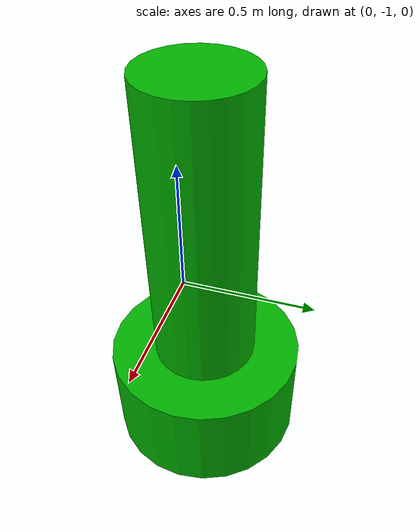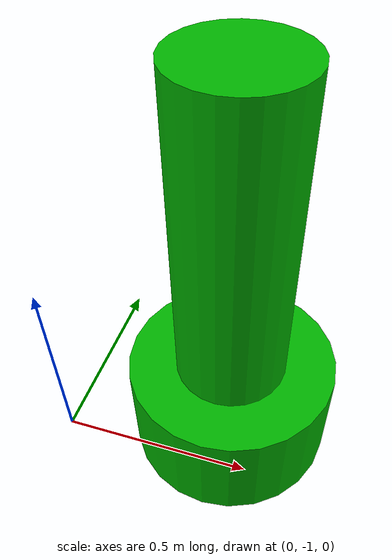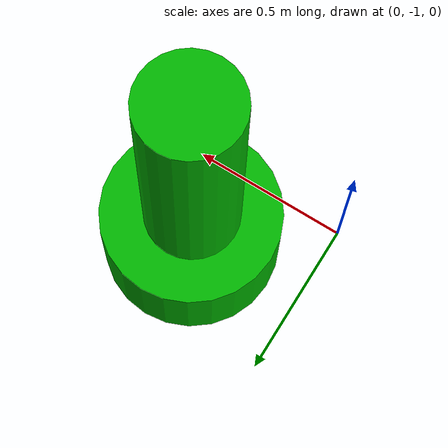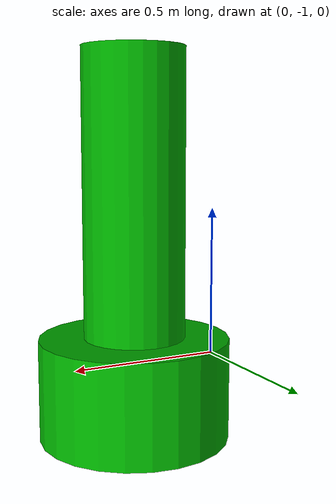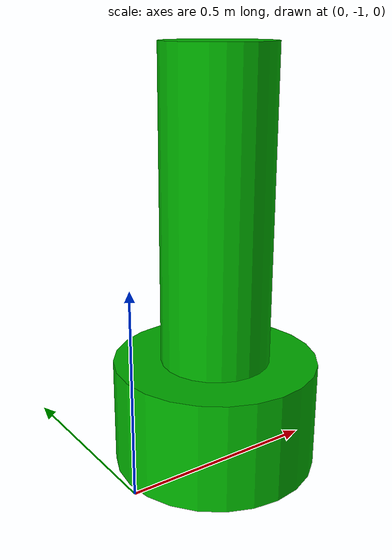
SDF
<?xml version='1.0'?>
<sdf version='1.7'>
  <model name='Starboard Marker Buoy (green)'>
    <link name='cylinder'>
      <inertial>
        <mass>0.068793</mass>
        <inertia>
          <ixx>0.00543853</ixx>
          <ixy>0</ixy>
          <ixz>0</ixz>
          <iyy>0.00543853</iyy>
          <iyz>0</iyz>
          <izz>0.0006256</izz>
        </inertia>
        <pose>0 0 0 0 -0 0</pose>
      </inertial>
      <pose>0.396646 -0.775352 0.496472 0 -0 0</pose>
      <gravity>1</gravity>
      <self_collide>0</self_collide>
      <kinematic>0</kinematic>
      <enable_wind>0</enable_wind>
      <visual name='visual'>
        <pose>0 0 0 0 -0 0</pose>
        <geometry>
          <cylinder>
            <radius>0.15</radius>
            <length>1</length>
          </cylinder>
        </geometry>
        <material>
          <lighting>1</lighting>
          <script>
            <uri>file://media/materials/scripts/gazebo.material</uri>
            <name>Gazebo/Grey</name>
          </script>
          <shader type='pixel'>
            <normal_map>__default__</normal_map>
          </shader>
          <ambient>0.3 0.3 0.3 1</ambient>
          <!-- Green color -->
          <diffuse>0 0.7 0 1</diffuse>
          <specular>0.01 0.01 0.01 1</specular>
          <emissive>0 0 0 1</emissive>
        </material>
        <transparency>0</transparency>
        <cast_shadows>1</cast_shadows>
      </visual>
      <collision name='collision'>
        <laser_retro>0</laser_retro>
        <max_contacts>10</max_contacts>
        <pose>0 0 0 0 -0 0</pose>
        <geometry>
          <cylinder>
            <radius>0.3</radius>
            <length>0.945576</length>
          </cylinder>
        </geometry>
        <surface>
          <friction>
            <ode>
              <mu>1</mu>
              <mu2>1</mu2>
              <fdir1>0 0 0</fdir1>
              <slip1>0</slip1>
              <slip2>0</slip2>
            </ode>
            <torsional>
              <coefficient>1</coefficient>
              <patch_radius>0</patch_radius>
              <surface_radius>0</surface_radius>
              <use_patch_radius>1</use_patch_radius>
              <ode>
                <slip>0</slip>
              </ode>
            </torsional>
          </friction>
          <bounce>
            <restitution_coefficient>0</restitution_coefficient>
            <threshold>1e+06</threshold>
          </bounce>
          <contact>
            <collide_without_contact>0</collide_without_contact>
            <collide_without_contact_bitmask>1</collide_without_contact_bitmask>
            <collide_bitmask>1</collide_bitmask>
            <ode>
              <soft_cfm>0</soft_cfm>
              <soft_erp>0.2</soft_erp>
              <kp>1e+13</kp>
              <kd>1</kd>
              <max_vel>0.01</max_vel>
              <min_depth>0</min_depth>
            </ode>
            <bullet>
              <split_impulse>1</split_impulse>
              <split_impulse_penetration_threshold>-0.01</split_impulse_penetration_threshold>
              <soft_cfm>0</soft_cfm>
              <soft_erp>0.2</soft_erp>
              <kp>1e+13</kp>
              <kd>1</kd>
            </bullet>
          </contact>
        </surface>
      </collision>
    </link>
    <link name='base'>
      <inertial>
        <mass>0.0961519</mass>
        <inertia>
          <ixx>0.00264433</ixx>
          <ixy>0</ixy>
          <ixz>0</ixz>
          <iyy>0.00264433</iyy>
          <iyz>0</iyz>
          <izz>0.00382696</izz>
        </inertia>
        <pose>0 0 0 0 -0 0</pose>
      </inertial>
      <pose>0.399215 -0.772784 0.003528 0 -0 0</pose>
      <gravity>1</gravity>
      <self_collide>0</self_collide>
      <kinematic>0</kinematic>
      <enable_wind>0</enable_wind>
      <visual name='visual'>
        <pose>0 0 0 0 -0 0</pose>
        <geometry>
          <cylinder>
            <radius>0.282139</radius>
            <length>0.302013</length>
          </cylinder>
        </geometry>
        <material>
          <lighting>1</lighting>
          <script>
            <uri>file://media/materials/scripts/gazebo.material</uri>
            <name>Gazebo/Grey</name>
          </script>
          <shader type='pixel'>
            <normal_map>__default__</normal_map>
          </shader>
          <ambient>0.3 0.3 0.3 1</ambient>
          <diffuse>0 0.7 0 1</diffuse>
          <specular>0.01 0.01 0.01 1</specular>
          <emissive>0 0 0 1</emissive>
        </material>
        <transparency>0</transparency>
        <cast_shadows>1</cast_shadows>
      </visual>
      <collision name='collision'>
        <laser_retro>0</laser_retro>
        <max_contacts>10</max_contacts>
        <pose>0 0 0 0 -0 0</pose>
        <geometry>
          <cylinder>
            <radius>0.282139</radius>
            <length>0.302013</length>
          </cylinder>
        </geometry>
        <surface>
          <friction>
            <ode>
              <mu>1</mu>
              <mu2>1</mu2>
              <fdir1>0 0 0</fdir1>
              <slip1>0</slip1>
              <slip2>0</slip2>
            </ode>
            <torsional>
              <coefficient>1</coefficient>
              <patch_radius>0</patch_radius>
              <surface_radius>0</surface_radius>
              <use_patch_radius>1</use_patch_radius>
              <ode>
                <slip>0</slip>
              </ode>
            </torsional>
          </friction>
          <bounce>
            <restitution_coefficient>0</restitution_coefficient>
            <threshold>1e+06</threshold>
          </bounce>
          <contact>
            <collide_without_contact>0</collide_without_contact>
            <collide_without_contact_bitmask>1</collide_without_contact_bitmask>
            <collide_bitmask>1</collide_bitmask>
            <ode>
              <soft_cfm>0</soft_cfm>
              <soft_erp>0.2</soft_erp>
              <kp>1e+13</kp>
              <kd>1</kd>
              <max_vel>0.01</max_vel>
              <min_depth>0</min_depth>
            </ode>
            <bullet>
              <split_impulse>1</split_impulse>
              <split_impulse_penetration_threshold>-0.01</split_impulse_penetration_threshold>
              <soft_cfm>0</soft_cfm>
              <soft_erp>0.2</soft_erp>
              <kp>1e+13</kp>
              <kd>1</kd>
            </bullet>
          </contact>
        </surface>
      </collision>
    </link>
    <static>1</static>
    <allow_auto_disable>1</allow_auto_disable>
  </model>
</sdf>
